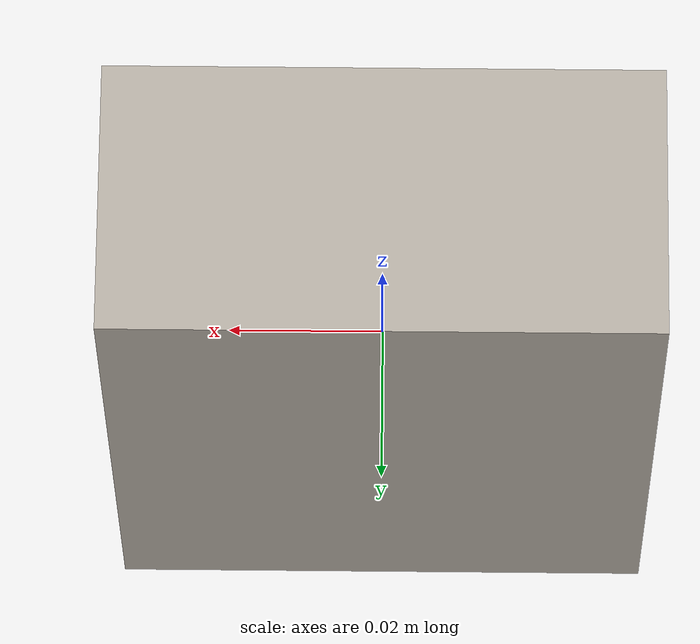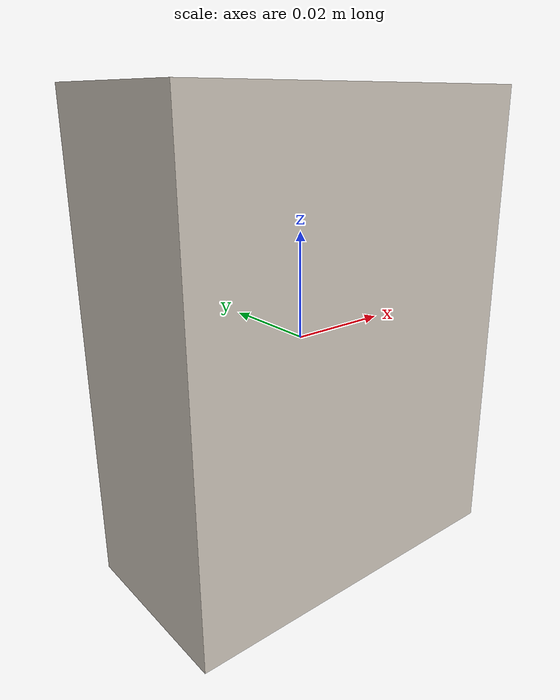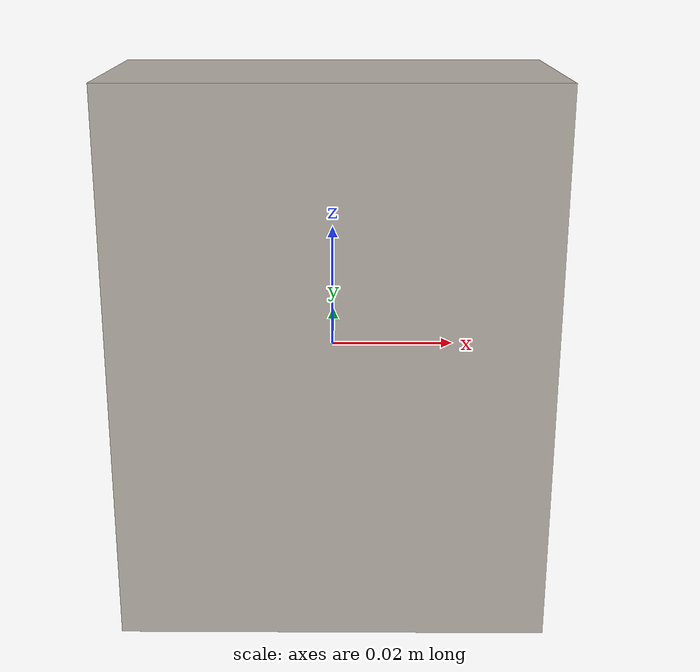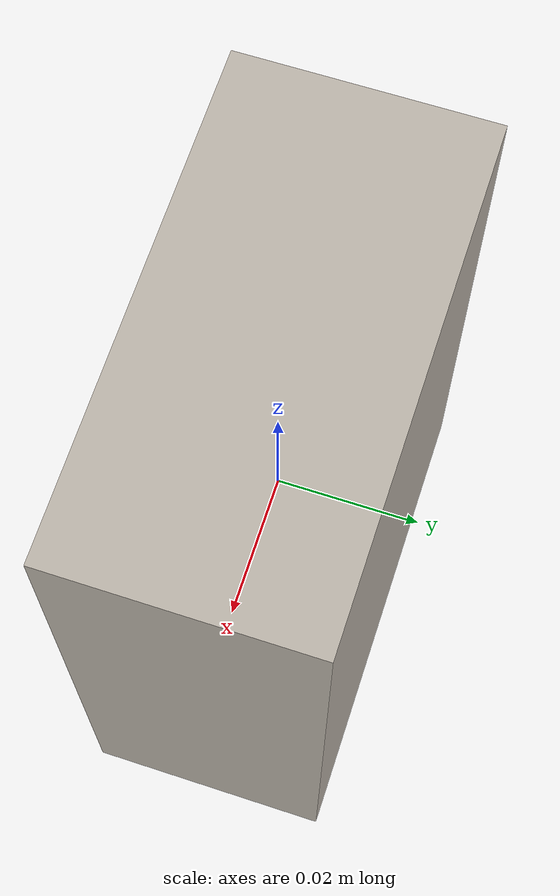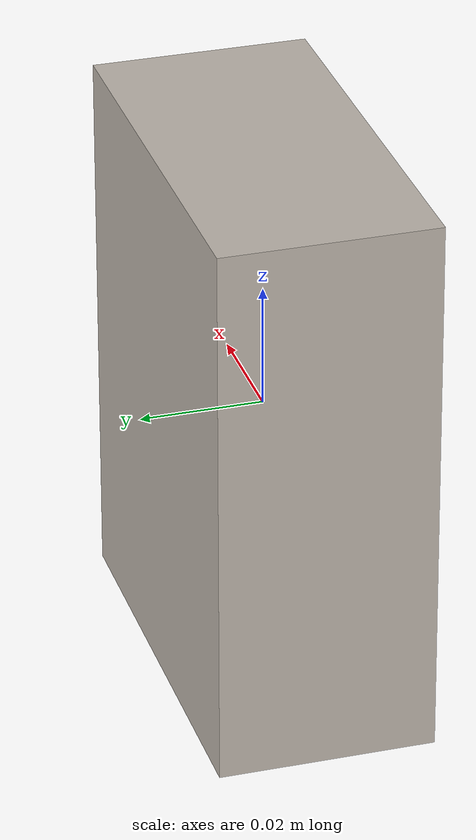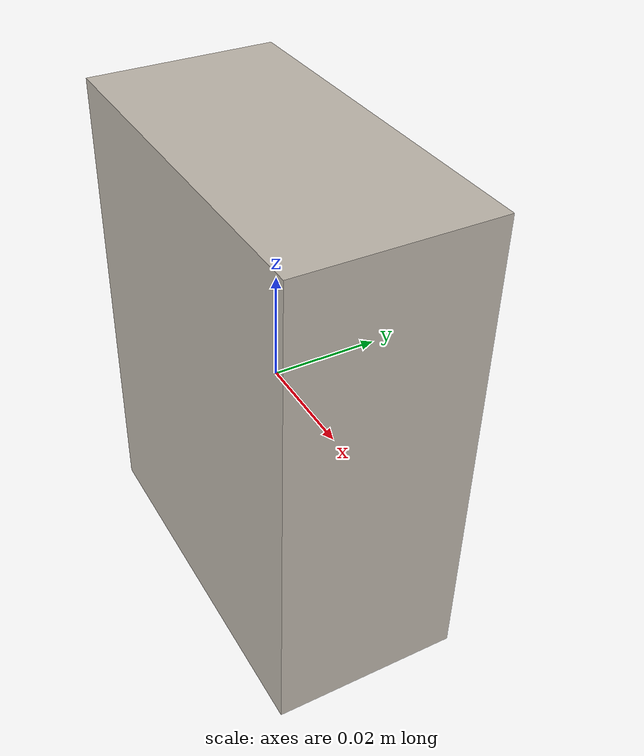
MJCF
<mujoco model="frito">
  <asset>
    <texture file="textures/boxes/frito.png" type="2d" name="tex-frito" />
    <material name="frito" reflectance="0.7" texrepeat="15 15" texture="tex-frito" texuniform="true"/>
  </asset>
  <worldbody>
    <body>
      <body name="collision">
        <geom pos="0 0 0" size="0.035 0.0175 0.045" type="box" solimp="0.998 0.998 0.001" solref="0.001 1" density="50" friction="0.95 0.3 0.1"  material="frito" group="1" condim="4"/>
      </body>

      <site rgba="0 0 0 0" size="0.005" pos="0 0 -0.045" name="bottom_site"/>
      <site rgba="0 0 0 0" size="0.005" pos="0 0 0.03" name="top_site"/>
      <site rgba="0 0 0 0" size="0.005" pos="0.06 0.06 0" name="horizontal_radius_site"/>
    </body>
  </worldbody>
</mujoco>
